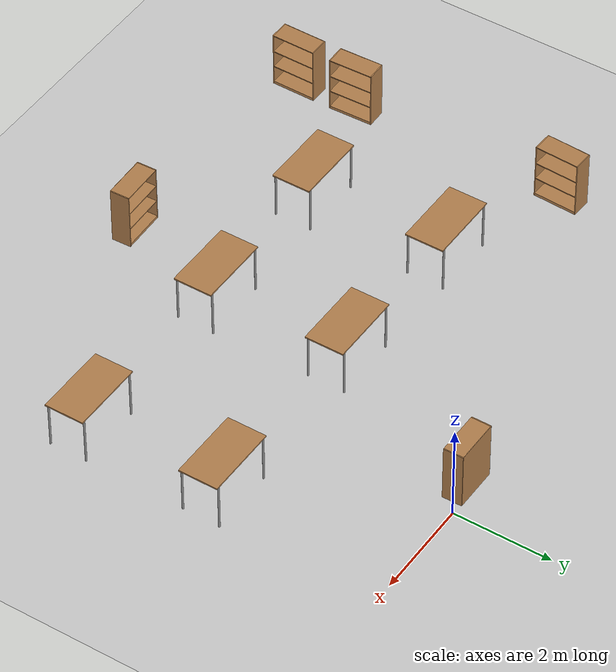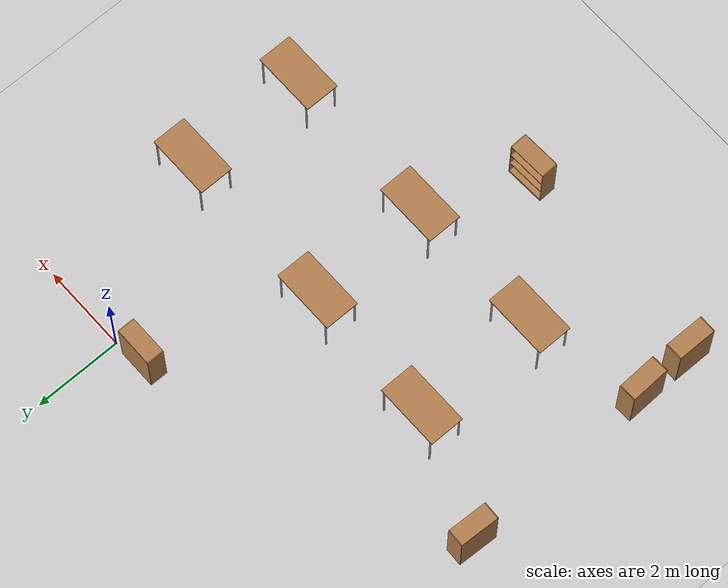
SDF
<sdf version="1.6">
 <world name="default">
  <model name="ground_plane">
   <static>1</static>
   <link name="link">
    <collision name="collision">
     <geometry><plane><normal>0 0 1</normal><size>100 100</size></plane></geometry>
     <surface>
      <contact><collide_bitmask>65535</collide_bitmask></contact>
      <friction><ode><mu>100</mu><mu2>50</mu2></ode></friction>
     </surface>
    </collision>
    <visual name="visual">
     <cast_shadows>0</cast_shadows>
     <geometry><plane><normal>0 0 1</normal><size>100 100</size></plane></geometry>
     <material>
      <script><uri>file://media/materials/scripts/gazebo.material</uri><name>Gazebo/Grey</name></script>
     </material>
    </visual>
   </link>
  </model>
  <model name="table_3">
   <static>1</static>
   <link name="link">
    <collision name="surface">
     <pose>0 0 1 0 -0 0</pose>
     <geometry><box><size>1.5 0.8 0.03</size></box></geometry>
     <surface><friction><ode><mu>0.6</mu><mu2>0.6</mu2></ode></friction></surface>
    </collision>
    <visual name="visual1">
     <pose>0 0 1 0 -0 0</pose>
     <geometry><box><size>1.5 0.8 0.03</size></box></geometry>
     <material>
      <script><uri>file://media/materials/scripts/gazebo.material</uri><name>Gazebo/Wood</name></script>
     </material>
    </visual>
    <collision name="front_left_leg">
     <pose>0.68 0.38 0.5 0 -0 0</pose>
     <geometry><cylinder><radius>0.02</radius><length>1</length></cylinder></geometry>
    </collision>
    <visual name="front_left_leg">
     <pose>0.68 0.38 0.5 0 -0 0</pose>
     <geometry><cylinder><radius>0.02</radius><length>1</length></cylinder></geometry>
     <material>
      <script><uri>file://media/materials/scripts/gazebo.material</uri><name>Gazebo/Grey</name></script>
     </material>
    </visual>
    <collision name="front_right_leg">
     <pose>0.68 -0.38 0.5 0 -0 0</pose>
     <geometry><cylinder><radius>0.02</radius><length>1</length></cylinder></geometry>
    </collision>
    <visual name="front_right_leg">
     <pose>0.68 -0.38 0.5 0 -0 0</pose>
     <geometry><cylinder><radius>0.02</radius><length>1</length></cylinder></geometry>
     <material>
      <script><uri>file://media/materials/scripts/gazebo.material</uri><name>Gazebo/Grey</name></script>
     </material>
    </visual>
    <collision name="back_right_leg">
     <pose>-0.68 -0.38 0.5 0 -0 0</pose>
     <geometry><cylinder><radius>0.02</radius><length>1</length></cylinder></geometry>
    </collision>
    <visual name="back_right_leg">
     <pose>-0.68 -0.38 0.5 0 -0 0</pose>
     <geometry><cylinder><radius>0.02</radius><length>1</length></cylinder></geometry>
     <material>
      <script><uri>file://media/materials/scripts/gazebo.material</uri><name>Gazebo/Grey</name></script>
     </material>
    </visual>
    <collision name="back_left_leg">
     <pose>-0.68 0.38 0.5 0 -0 0</pose>
     <geometry><cylinder><radius>0.02</radius><length>1</length></cylinder></geometry>
    </collision>
    <visual name="back_left_leg">
     <pose>-0.68 0.38 0.5 0 -0 0</pose>
     <geometry><cylinder><radius>0.02</radius><length>1</length></cylinder></geometry>
     <material>
      <script><uri>file://media/materials/scripts/gazebo.material</uri><name>Gazebo/Grey</name></script>
     </material>
    </visual>
   </link>
   <pose>1.7722 -6.37571 0 0 -0 0</pose>
  </model>
  <model name="table_5">
   <static>1</static>
   <link name="link">
    <collision name="surface">
     <pose>0 0 1 0 -0 0</pose>
     <geometry><box><size>1.5 0.8 0.03</size></box></geometry>
     <surface><friction><ode><mu>0.6</mu><mu2>0.6</mu2></ode></friction></surface>
    </collision>
    <visual name="visual1">
     <pose>0 0 1 0 -0 0</pose>
     <geometry><box><size>1.5 0.8 0.03</size></box></geometry>
     <material>
      <script><uri>file://media/materials/scripts/gazebo.material</uri><name>Gazebo/Wood</name></script>
     </material>
    </visual>
    <collision name="front_left_leg">
     <pose>0.68 0.38 0.5 0 -0 0</pose>
     <geometry><cylinder><radius>0.02</radius><length>1</length></cylinder></geometry>
    </collision>
    <visual name="front_left_leg">
     <pose>0.68 0.38 0.5 0 -0 0</pose>
     <geometry><cylinder><radius>0.02</radius><length>1</length></cylinder></geometry>
     <material>
      <script><uri>file://media/materials/scripts/gazebo.material</uri><name>Gazebo/Grey</name></script>
     </material>
    </visual>
    <collision name="front_right_leg">
     <pose>0.68 -0.38 0.5 0 -0 0</pose>
     <geometry><cylinder><radius>0.02</radius><length>1</length></cylinder></geometry>
    </collision>
    <visual name="front_right_leg">
     <pose>0.68 -0.38 0.5 0 -0 0</pose>
     <geometry><cylinder><radius>0.02</radius><length>1</length></cylinder></geometry>
     <material>
      <script><uri>file://media/materials/scripts/gazebo.material</uri><name>Gazebo/Grey</name></script>
     </material>
    </visual>
    <collision name="back_right_leg">
     <pose>-0.68 -0.38 0.5 0 -0 0</pose>
     <geometry><cylinder><radius>0.02</radius><length>1</length></cylinder></geometry>
    </collision>
    <visual name="back_right_leg">
     <pose>-0.68 -0.38 0.5 0 -0 0</pose>
     <geometry><cylinder><radius>0.02</radius><length>1</length></cylinder></geometry>
     <material>
      <script><uri>file://media/materials/scripts/gazebo.material</uri><name>Gazebo/Grey</name></script>
     </material>
    </visual>
    <collision name="back_left_leg">
     <pose>-0.68 0.38 0.5 0 -0 0</pose>
     <geometry><cylinder><radius>0.02</radius><length>1</length></cylinder></geometry>
    </collision>
    <visual name="back_left_leg">
     <pose>-0.68 0.38 0.5 0 -0 0</pose>
     <geometry><cylinder><radius>0.02</radius><length>1</length></cylinder></geometry>
     <material>
      <script><uri>file://media/materials/scripts/gazebo.material</uri><name>Gazebo/Grey</name></script>
     </material>
    </visual>
   </link>
   <pose>1.77864 -3.55993 0 0 -0 0</pose>
  </model>
  <model name="table_6">
   <static>1</static>
   <link name="link">
    <collision name="surface">
     <pose>0 0 1 0 -0 0</pose>
     <geometry><box><size>1.5 0.8 0.03</size></box></geometry>
     <surface><friction><ode><mu>0.6</mu><mu2>0.6</mu2></ode></friction></surface>
    </collision>
    <visual name="visual1">
     <pose>0 0 1 0 -0 0</pose>
     <geometry><box><size>1.5 0.8 0.03</size></box></geometry>
     <material>
      <script><uri>file://media/materials/scripts/gazebo.material</uri><name>Gazebo/Wood</name></script>
     </material>
    </visual>
    <collision name="front_left_leg">
     <pose>0.68 0.38 0.5 0 -0 0</pose>
     <geometry><cylinder><radius>0.02</radius><length>1</length></cylinder></geometry>
    </collision>
    <visual name="front_left_leg">
     <pose>0.68 0.38 0.5 0 -0 0</pose>
     <geometry><cylinder><radius>0.02</radius><length>1</length></cylinder></geometry>
     <material>
      <script><uri>file://media/materials/scripts/gazebo.material</uri><name>Gazebo/Grey</name></script>
     </material>
    </visual>
    <collision name="front_right_leg">
     <pose>0.68 -0.38 0.5 0 -0 0</pose>
     <geometry><cylinder><radius>0.02</radius><length>1</length></cylinder></geometry>
    </collision>
    <visual name="front_right_leg">
     <pose>0.68 -0.38 0.5 0 -0 0</pose>
     <geometry><cylinder><radius>0.02</radius><length>1</length></cylinder></geometry>
     <material>
      <script><uri>file://media/materials/scripts/gazebo.material</uri><name>Gazebo/Grey</name></script>
     </material>
    </visual>
    <collision name="back_right_leg">
     <pose>-0.68 -0.38 0.5 0 -0 0</pose>
     <geometry><cylinder><radius>0.02</radius><length>1</length></cylinder></geometry>
    </collision>
    <visual name="back_right_leg">
     <pose>-0.68 -0.38 0.5 0 -0 0</pose>
     <geometry><cylinder><radius>0.02</radius><length>1</length></cylinder></geometry>
     <material>
      <script><uri>file://media/materials/scripts/gazebo.material</uri><name>Gazebo/Grey</name></script>
     </material>
    </visual>
    <collision name="back_left_leg">
     <pose>-0.68 0.38 0.5 0 -0 0</pose>
     <geometry><cylinder><radius>0.02</radius><length>1</length></cylinder></geometry>
    </collision>
    <visual name="back_left_leg">
     <pose>-0.68 0.38 0.5 0 -0 0</pose>
     <geometry><cylinder><radius>0.02</radius><length>1</length></cylinder></geometry>
     <material>
      <script><uri>file://media/materials/scripts/gazebo.material</uri><name>Gazebo/Grey</name></script>
     </material>
    </visual>
   </link>
   <pose>-5.25921 -6.34689 0 0 -0 0</pose>
  </model>
  <model name="table_9">
   <static>1</static>
   <link name="link">
    <collision name="surface">
     <pose>0 0 1 0 -0 0</pose>
     <geometry><box><size>1.5 0.8 0.03</size></box></geometry>
     <surface><friction><ode><mu>0.6</mu><mu2>0.6</mu2></ode></friction></surface>
    </collision>
    <visual name="visual1">
     <pose>0 0 1 0 -0 0</pose>
     <geometry><box><size>1.5 0.8 0.03</size></box></geometry>
     <material>
      <script><uri>file://media/materials/scripts/gazebo.material</uri><name>Gazebo/Wood</name></script>
     </material>
    </visual>
    <collision name="front_left_leg">
     <pose>0.68 0.38 0.5 0 -0 0</pose>
     <geometry><cylinder><radius>0.02</radius><length>1</length></cylinder></geometry>
    </collision>
    <visual name="front_left_leg">
     <pose>0.68 0.38 0.5 0 -0 0</pose>
     <geometry><cylinder><radius>0.02</radius><length>1</length></cylinder></geometry>
     <material>
      <script><uri>file://media/materials/scripts/gazebo.material</uri><name>Gazebo/Grey</name></script>
     </material>
    </visual>
    <collision name="front_right_leg">
     <pose>0.68 -0.38 0.5 0 -0 0</pose>
     <geometry><cylinder><radius>0.02</radius><length>1</length></cylinder></geometry>
    </collision>
    <visual name="front_right_leg">
     <pose>0.68 -0.38 0.5 0 -0 0</pose>
     <geometry><cylinder><radius>0.02</radius><length>1</length></cylinder></geometry>
     <material>
      <script><uri>file://media/materials/scripts/gazebo.material</uri><name>Gazebo/Grey</name></script>
     </material>
    </visual>
    <collision name="back_right_leg">
     <pose>-0.68 -0.38 0.5 0 -0 0</pose>
     <geometry><cylinder><radius>0.02</radius><length>1</length></cylinder></geometry>
    </collision>
    <visual name="back_right_leg">
     <pose>-0.68 -0.38 0.5 0 -0 0</pose>
     <geometry><cylinder><radius>0.02</radius><length>1</length></cylinder></geometry>
     <material>
      <script><uri>file://media/materials/scripts/gazebo.material</uri><name>Gazebo/Grey</name></script>
     </material>
    </visual>
    <collision name="back_left_leg">
     <pose>-0.68 0.38 0.5 0 -0 0</pose>
     <geometry><cylinder><radius>0.02</radius><length>1</length></cylinder></geometry>
    </collision>
    <visual name="back_left_leg">
     <pose>-0.68 0.38 0.5 0 -0 0</pose>
     <geometry><cylinder><radius>0.02</radius><length>1</length></cylinder></geometry>
     <material>
      <script><uri>file://media/materials/scripts/gazebo.material</uri><name>Gazebo/Grey</name></script>
     </material>
    </visual>
   </link>
   <pose>-5.27613 -3.47725 0 0 -0 0</pose>
  </model>
  <model name="table_10">
   <static>1</static>
   <link name="link">
    <collision name="surface">
     <pose>0 0 1 0 -0 0</pose>
     <geometry><box><size>1.5 0.8 0.03</size></box></geometry>
     <surface><friction><ode><mu>0.6</mu><mu2>0.6</mu2></ode></friction></surface>
    </collision>
    <visual name="visual1">
     <pose>0 0 1 0 -0 0</pose>
     <geometry><box><size>1.5 0.8 0.03</size></box></geometry>
     <material>
      <script><uri>file://media/materials/scripts/gazebo.material</uri><name>Gazebo/Wood</name></script>
     </material>
    </visual>
    <collision name="front_left_leg">
     <pose>0.68 0.38 0.5 0 -0 0</pose>
     <geometry><cylinder><radius>0.02</radius><length>1</length></cylinder></geometry>
    </collision>
    <visual name="front_left_leg">
     <pose>0.68 0.38 0.5 0 -0 0</pose>
     <geometry><cylinder><radius>0.02</radius><length>1</length></cylinder></geometry>
     <material>
      <script><uri>file://media/materials/scripts/gazebo.material</uri><name>Gazebo/Grey</name></script>
     </material>
    </visual>
    <collision name="front_right_leg">
     <pose>0.68 -0.38 0.5 0 -0 0</pose>
     <geometry><cylinder><radius>0.02</radius><length>1</length></cylinder></geometry>
    </collision>
    <visual name="front_right_leg">
     <pose>0.68 -0.38 0.5 0 -0 0</pose>
     <geometry><cylinder><radius>0.02</radius><length>1</length></cylinder></geometry>
     <material>
      <script><uri>file://media/materials/scripts/gazebo.material</uri><name>Gazebo/Grey</name></script>
     </material>
    </visual>
    <collision name="back_right_leg">
     <pose>-0.68 -0.38 0.5 0 -0 0</pose>
     <geometry><cylinder><radius>0.02</radius><length>1</length></cylinder></geometry>
    </collision>
    <visual name="back_right_leg">
     <pose>-0.68 -0.38 0.5 0 -0 0</pose>
     <geometry><cylinder><radius>0.02</radius><length>1</length></cylinder></geometry>
     <material>
      <script><uri>file://media/materials/scripts/gazebo.material</uri><name>Gazebo/Grey</name></script>
     </material>
    </visual>
    <collision name="back_left_leg">
     <pose>-0.68 0.38 0.5 0 -0 0</pose>
     <geometry><cylinder><radius>0.02</radius><length>1</length></cylinder></geometry>
    </collision>
    <visual name="back_left_leg">
     <pose>-0.68 0.38 0.5 0 -0 0</pose>
     <geometry><cylinder><radius>0.02</radius><length>1</length></cylinder></geometry>
     <material>
      <script><uri>file://media/materials/scripts/gazebo.material</uri><name>Gazebo/Grey</name></script>
     </material>
    </visual>
   </link>
   <pose>-2.03953 -6.30852 0 0 -0 0</pose>
  </model>
  <model name="table_13">
   <static>1</static>
   <link name="link">
    <collision name="surface">
     <pose>0 0 1 0 -0 0</pose>
     <geometry><box><size>1.5 0.8 0.03</size></box></geometry>
     <surface><friction><ode><mu>0.6</mu><mu2>0.6</mu2></ode></friction></surface>
    </collision>
    <visual name="visual1">
     <pose>0 0 1 0 -0 0</pose>
     <geometry><box><size>1.5 0.8 0.03</size></box></geometry>
     <material>
      <script><uri>file://media/materials/scripts/gazebo.material</uri><name>Gazebo/Wood</name></script>
     </material>
    </visual>
    <collision name="front_left_leg">
     <pose>0.68 0.38 0.5 0 -0 0</pose>
     <geometry><cylinder><radius>0.02</radius><length>1</length></cylinder></geometry>
    </collision>
    <visual name="front_left_leg">
     <pose>0.68 0.38 0.5 0 -0 0</pose>
     <geometry><cylinder><radius>0.02</radius><length>1</length></cylinder></geometry>
     <material>
      <script><uri>file://media/materials/scripts/gazebo.material</uri><name>Gazebo/Grey</name></script>
     </material>
    </visual>
    <collision name="front_right_leg">
     <pose>0.68 -0.38 0.5 0 -0 0</pose>
     <geometry><cylinder><radius>0.02</radius><length>1</length></cylinder></geometry>
    </collision>
    <visual name="front_right_leg">
     <pose>0.68 -0.38 0.5 0 -0 0</pose>
     <geometry><cylinder><radius>0.02</radius><length>1</length></cylinder></geometry>
     <material>
      <script><uri>file://media/materials/scripts/gazebo.material</uri><name>Gazebo/Grey</name></script>
     </material>
    </visual>
    <collision name="back_right_leg">
     <pose>-0.68 -0.38 0.5 0 -0 0</pose>
     <geometry><cylinder><radius>0.02</radius><length>1</length></cylinder></geometry>
    </collision>
    <visual name="back_right_leg">
     <pose>-0.68 -0.38 0.5 0 -0 0</pose>
     <geometry><cylinder><radius>0.02</radius><length>1</length></cylinder></geometry>
     <material>
      <script><uri>file://media/materials/scripts/gazebo.material</uri><name>Gazebo/Grey</name></script>
     </material>
    </visual>
    <collision name="back_left_leg">
     <pose>-0.68 0.38 0.5 0 -0 0</pose>
     <geometry><cylinder><radius>0.02</radius><length>1</length></cylinder></geometry>
    </collision>
    <visual name="back_left_leg">
     <pose>-0.68 0.38 0.5 0 -0 0</pose>
     <geometry><cylinder><radius>0.02</radius><length>1</length></cylinder></geometry>
     <material>
      <script><uri>file://media/materials/scripts/gazebo.material</uri><name>Gazebo/Grey</name></script>
     </material>
    </visual>
   </link>
   <pose>-2.09397 -3.53851 0 0 -0 0</pose>
  </model>
  <model name="bookshelf_4">
   <static>1</static>
   <link name="link">
    <inertial><mass>1</mass></inertial>
    <collision name="back">
     <pose>0 0.005 0.6 0 -0 0</pose>
     <geometry><box><size>0.9 0.01 1.2</size></box></geometry>
    </collision>
    <visual name="visual1">
     <pose>0 0.005 0.6 0 -0 0</pose>
     <geometry><box><size>0.9 0.01 1.2</size></box></geometry>
     <material>
      <script><uri>file://media/materials/scripts/gazebo.material</uri><name>Gazebo/Wood</name></script>
     </material>
    </visual>
    <collision name="left_side">
     <pose>0.45 -0.195 0.6 0 -0 0</pose>
     <geometry><box><size>0.02 0.4 1.2</size></box></geometry>
    </collision>
    <visual name="visual2">
     <pose>0.45 -0.195 0.6 0 -0 0</pose>
     <geometry><box><size>0.02 0.4 1.2</size></box></geometry>
     <material>
      <script><uri>file://media/materials/scripts/gazebo.material</uri><name>Gazebo/Wood</name></script>
     </material>
    </visual>
    <collision name="right_side">
     <pose>-0.45 -0.195 0.6 0 -0 0</pose>
     <geometry><box><size>0.02 0.4 1.2</size></box></geometry>
    </collision>
    <visual name="visual3">
     <pose>-0.45 -0.195 0.6 0 -0 0</pose>
     <geometry><box><size>0.02 0.4 1.2</size></box></geometry>
     <material>
      <script><uri>file://media/materials/scripts/gazebo.material</uri><name>Gazebo/Wood</name></script>
     </material>
    </visual>
    <collision name="bottom">
     <pose>0 -0.195 0.03 0 -0 0</pose>
     <geometry><box><size>0.88 0.4 0.06</size></box></geometry>
    </collision>
    <visual name="visual4">
     <pose>0 -0.195 0.03 0 -0 0</pose>
     <geometry><box><size>0.88 0.4 0.06</size></box></geometry>
     <material>
      <script><uri>file://media/materials/scripts/gazebo.material</uri><name>Gazebo/Wood</name></script>
     </material>
    </visual>
    <collision name="top">
     <pose>0 -0.195 1.19 0 -0 0</pose>
     <geometry><box><size>0.88 0.4 0.02</size></box></geometry>
    </collision>
    <visual name="visual5">
     <pose>0 -0.195 1.19 0 -0 0</pose>
     <geometry><box><size>0.88 0.4 0.02</size></box></geometry>
     <material>
      <script><uri>file://media/materials/scripts/gazebo.material</uri><name>Gazebo/Wood</name></script>
     </material>
    </visual>
    <collision name="low_shelf">
     <pose>0 -0.195 0.43 0 -0 0</pose>
     <geometry><box><size>0.88 0.4 0.02</size></box></geometry>
    </collision>
    <visual name="visual6">
     <pose>0 -0.195 0.43 0 -0 0</pose>
     <geometry><box><size>0.88 0.4 0.02</size></box></geometry>
     <material>
      <script><uri>file://media/materials/scripts/gazebo.material</uri><name>Gazebo/Wood</name></script>
     </material>
    </visual>
    <collision name="high_shelf">
     <pose>0 -0.195 0.8 0 -0 0</pose>
     <geometry><box><size>0.88 0.4 0.02</size></box></geometry>
    </collision>
    <visual name="visual7">
     <pose>0 -0.195 0.8 0 -0 0</pose>
     <geometry><box><size>0.88 0.4 0.02</size></box></geometry>
     <material>
      <script><uri>file://media/materials/scripts/gazebo.material</uri><name>Gazebo/Wood</name></script>
     </material>
    </visual>
   </link>
   <pose>-0.686415 0.03479 0 0 -0 0</pose>
  </model>
  <model name="bookshelf_6">
   <static>1</static>
   <link name="link">
    <inertial><mass>1</mass></inertial>
    <collision name="back">
     <pose>0 0.005 0.6 0 -0 0</pose>
     <geometry><box><size>0.9 0.01 1.2</size></box></geometry>
    </collision>
    <visual name="visual1">
     <pose>0 0.005 0.6 0 -0 0</pose>
     <geometry><box><size>0.9 0.01 1.2</size></box></geometry>
     <material>
      <script><uri>file://media/materials/scripts/gazebo.material</uri><name>Gazebo/Wood</name></script>
     </material>
    </visual>
    <collision name="left_side">
     <pose>0.45 -0.195 0.6 0 -0 0</pose>
     <geometry><box><size>0.02 0.4 1.2</size></box></geometry>
    </collision>
    <visual name="visual2">
     <pose>0.45 -0.195 0.6 0 -0 0</pose>
     <geometry><box><size>0.02 0.4 1.2</size></box></geometry>
     <material>
      <script><uri>file://media/materials/scripts/gazebo.material</uri><name>Gazebo/Wood</name></script>
     </material>
    </visual>
    <collision name="right_side">
     <pose>-0.45 -0.195 0.6 0 -0 0</pose>
     <geometry><box><size>0.02 0.4 1.2</size></box></geometry>
    </collision>
    <visual name="visual3">
     <pose>-0.45 -0.195 0.6 0 -0 0</pose>
     <geometry><box><size>0.02 0.4 1.2</size></box></geometry>
     <material>
      <script><uri>file://media/materials/scripts/gazebo.material</uri><name>Gazebo/Wood</name></script>
     </material>
    </visual>
    <collision name="bottom">
     <pose>0 -0.195 0.03 0 -0 0</pose>
     <geometry><box><size>0.88 0.4 0.06</size></box></geometry>
    </collision>
    <visual name="visual4">
     <pose>0 -0.195 0.03 0 -0 0</pose>
     <geometry><box><size>0.88 0.4 0.06</size></box></geometry>
     <material>
      <script><uri>file://media/materials/scripts/gazebo.material</uri><name>Gazebo/Wood</name></script>
     </material>
    </visual>
    <collision name="top">
     <pose>0 -0.195 1.19 0 -0 0</pose>
     <geometry><box><size>0.88 0.4 0.02</size></box></geometry>
    </collision>
    <visual name="visual5">
     <pose>0 -0.195 1.19 0 -0 0</pose>
     <geometry><box><size>0.88 0.4 0.02</size></box></geometry>
     <material>
      <script><uri>file://media/materials/scripts/gazebo.material</uri><name>Gazebo/Wood</name></script>
     </material>
    </visual>
    <collision name="low_shelf">
     <pose>0 -0.195 0.43 0 -0 0</pose>
     <geometry><box><size>0.88 0.4 0.02</size></box></geometry>
    </collision>
    <visual name="visual6">
     <pose>0 -0.195 0.43 0 -0 0</pose>
     <geometry><box><size>0.88 0.4 0.02</size></box></geometry>
     <material>
      <script><uri>file://media/materials/scripts/gazebo.material</uri><name>Gazebo/Wood</name></script>
     </material>
    </visual>
    <collision name="high_shelf">
     <pose>0 -0.195 0.8 0 -0 0</pose>
     <geometry><box><size>0.88 0.4 0.02</size></box></geometry>
    </collision>
    <visual name="visual7">
     <pose>0 -0.195 0.8 0 -0 0</pose>
     <geometry><box><size>0.88 0.4 0.02</size></box></geometry>
     <material>
      <script><uri>file://media/materials/scripts/gazebo.material</uri><name>Gazebo/Wood</name></script>
     </material>
    </visual>
   </link>
   <pose>-2.82315 -8.86889 0 0 0 -3.10801</pose>
  </model>
  <model name="bookshelf_7">
   <static>1</static>
   <link name="link">
    <inertial><mass>1</mass></inertial>
    <collision name="back">
     <pose>0 0.005 0.6 0 -0 0</pose>
     <geometry><box><size>0.9 0.01 1.2</size></box></geometry>
    </collision>
    <visual name="visual1">
     <pose>0 0.005 0.6 0 -0 0</pose>
     <geometry><box><size>0.9 0.01 1.2</size></box></geometry>
     <material>
      <script><uri>file://media/materials/scripts/gazebo.material</uri><name>Gazebo/Wood</name></script>
     </material>
    </visual>
    <collision name="left_side">
     <pose>0.45 -0.195 0.6 0 -0 0</pose>
     <geometry><box><size>0.02 0.4 1.2</size></box></geometry>
    </collision>
    <visual name="visual2">
     <pose>0.45 -0.195 0.6 0 -0 0</pose>
     <geometry><box><size>0.02 0.4 1.2</size></box></geometry>
     <material>
      <script><uri>file://media/materials/scripts/gazebo.material</uri><name>Gazebo/Wood</name></script>
     </material>
    </visual>
    <collision name="right_side">
     <pose>-0.45 -0.195 0.6 0 -0 0</pose>
     <geometry><box><size>0.02 0.4 1.2</size></box></geometry>
    </collision>
    <visual name="visual3">
     <pose>-0.45 -0.195 0.6 0 -0 0</pose>
     <geometry><box><size>0.02 0.4 1.2</size></box></geometry>
     <material>
      <script><uri>file://media/materials/scripts/gazebo.material</uri><name>Gazebo/Wood</name></script>
     </material>
    </visual>
    <collision name="bottom">
     <pose>0 -0.195 0.03 0 -0 0</pose>
     <geometry><box><size>0.88 0.4 0.06</size></box></geometry>
    </collision>
    <visual name="visual4">
     <pose>0 -0.195 0.03 0 -0 0</pose>
     <geometry><box><size>0.88 0.4 0.06</size></box></geometry>
     <material>
      <script><uri>file://media/materials/scripts/gazebo.material</uri><name>Gazebo/Wood</name></script>
     </material>
    </visual>
    <collision name="top">
     <pose>0 -0.195 1.19 0 -0 0</pose>
     <geometry><box><size>0.88 0.4 0.02</size></box></geometry>
    </collision>
    <visual name="visual5">
     <pose>0 -0.195 1.19 0 -0 0</pose>
     <geometry><box><size>0.88 0.4 0.02</size></box></geometry>
     <material>
      <script><uri>file://media/materials/scripts/gazebo.material</uri><name>Gazebo/Wood</name></script>
     </material>
    </visual>
    <collision name="low_shelf">
     <pose>0 -0.195 0.43 0 -0 0</pose>
     <geometry><box><size>0.88 0.4 0.02</size></box></geometry>
    </collision>
    <visual name="visual6">
     <pose>0 -0.195 0.43 0 -0 0</pose>
     <geometry><box><size>0.88 0.4 0.02</size></box></geometry>
     <material>
      <script><uri>file://media/materials/scripts/gazebo.material</uri><name>Gazebo/Wood</name></script>
     </material>
    </visual>
    <collision name="high_shelf">
     <pose>0 -0.195 0.8 0 -0 0</pose>
     <geometry><box><size>0.88 0.4 0.02</size></box></geometry>
    </collision>
    <visual name="visual7">
     <pose>0 -0.195 0.8 0 -0 0</pose>
     <geometry><box><size>0.88 0.4 0.02</size></box></geometry>
     <material>
      <script><uri>file://media/materials/scripts/gazebo.material</uri><name>Gazebo/Wood</name></script>
     </material>
    </visual>
   </link>
   <pose>-7.96408 -8.33226 0 0 -0 1.56027</pose>
  </model>
  <model name="bookshelf_8">
   <static>1</static>
   <link name="link">
    <inertial><mass>1</mass></inertial>
    <collision name="back">
     <pose>0 0.005 0.6 0 -0 0</pose>
     <geometry><box><size>0.9 0.01 1.2</size></box></geometry>
    </collision>
    <visual name="visual1">
     <pose>0 0.005 0.6 0 -0 0</pose>
     <geometry><box><size>0.9 0.01 1.2</size></box></geometry>
     <material>
      <script><uri>file://media/materials/scripts/gazebo.material</uri><name>Gazebo/Wood</name></script>
     </material>
    </visual>
    <collision name="left_side">
     <pose>0.45 -0.195 0.6 0 -0 0</pose>
     <geometry><box><size>0.02 0.4 1.2</size></box></geometry>
    </collision>
    <visual name="visual2">
     <pose>0.45 -0.195 0.6 0 -0 0</pose>
     <geometry><box><size>0.02 0.4 1.2</size></box></geometry>
     <material>
      <script><uri>file://media/materials/scripts/gazebo.material</uri><name>Gazebo/Wood</name></script>
     </material>
    </visual>
    <collision name="right_side">
     <pose>-0.45 -0.195 0.6 0 -0 0</pose>
     <geometry><box><size>0.02 0.4 1.2</size></box></geometry>
    </collision>
    <visual name="visual3">
     <pose>-0.45 -0.195 0.6 0 -0 0</pose>
     <geometry><box><size>0.02 0.4 1.2</size></box></geometry>
     <material>
      <script><uri>file://media/materials/scripts/gazebo.material</uri><name>Gazebo/Wood</name></script>
     </material>
    </visual>
    <collision name="bottom">
     <pose>0 -0.195 0.03 0 -0 0</pose>
     <geometry><box><size>0.88 0.4 0.06</size></box></geometry>
    </collision>
    <visual name="visual4">
     <pose>0 -0.195 0.03 0 -0 0</pose>
     <geometry><box><size>0.88 0.4 0.06</size></box></geometry>
     <material>
      <script><uri>file://media/materials/scripts/gazebo.material</uri><name>Gazebo/Wood</name></script>
     </material>
    </visual>
    <collision name="top">
     <pose>0 -0.195 1.19 0 -0 0</pose>
     <geometry><box><size>0.88 0.4 0.02</size></box></geometry>
    </collision>
    <visual name="visual5">
     <pose>0 -0.195 1.19 0 -0 0</pose>
     <geometry><box><size>0.88 0.4 0.02</size></box></geometry>
     <material>
      <script><uri>file://media/materials/scripts/gazebo.material</uri><name>Gazebo/Wood</name></script>
     </material>
    </visual>
    <collision name="low_shelf">
     <pose>0 -0.195 0.43 0 -0 0</pose>
     <geometry><box><size>0.88 0.4 0.02</size></box></geometry>
    </collision>
    <visual name="visual6">
     <pose>0 -0.195 0.43 0 -0 0</pose>
     <geometry><box><size>0.88 0.4 0.02</size></box></geometry>
     <material>
      <script><uri>file://media/materials/scripts/gazebo.material</uri><name>Gazebo/Wood</name></script>
     </material>
    </visual>
    <collision name="high_shelf">
     <pose>0 -0.195 0.8 0 -0 0</pose>
     <geometry><box><size>0.88 0.4 0.02</size></box></geometry>
    </collision>
    <visual name="visual7">
     <pose>0 -0.195 0.8 0 -0 0</pose>
     <geometry><box><size>0.88 0.4 0.02</size></box></geometry>
     <material>
      <script><uri>file://media/materials/scripts/gazebo.material</uri><name>Gazebo/Wood</name></script>
     </material>
    </visual>
   </link>
   <pose>-7.97304 -7.06584 0 0 -0 1.60125</pose>
  </model>
  <model name="bookshelf_9">
   <static>1</static>
   <link name="link">
    <inertial><mass>1</mass></inertial>
    <collision name="back">
     <pose>0 0.005 0.6 0 -0 0</pose>
     <geometry><box><size>0.9 0.01 1.2</size></box></geometry>
    </collision>
    <visual name="visual1">
     <pose>0 0.005 0.6 0 -0 0</pose>
     <geometry><box><size>0.9 0.01 1.2</size></box></geometry>
     <material>
      <script><uri>file://media/materials/scripts/gazebo.material</uri><name>Gazebo/Wood</name></script>
     </material>
    </visual>
    <collision name="left_side">
     <pose>0.45 -0.195 0.6 0 -0 0</pose>
     <geometry><box><size>0.02 0.4 1.2</size></box></geometry>
    </collision>
    <visual name="visual2">
     <pose>0.45 -0.195 0.6 0 -0 0</pose>
     <geometry><box><size>0.02 0.4 1.2</size></box></geometry>
     <material>
      <script><uri>file://media/materials/scripts/gazebo.material</uri><name>Gazebo/Wood</name></script>
     </material>
    </visual>
    <collision name="right_side">
     <pose>-0.45 -0.195 0.6 0 -0 0</pose>
     <geometry><box><size>0.02 0.4 1.2</size></box></geometry>
    </collision>
    <visual name="visual3">
     <pose>-0.45 -0.195 0.6 0 -0 0</pose>
     <geometry><box><size>0.02 0.4 1.2</size></box></geometry>
     <material>
      <script><uri>file://media/materials/scripts/gazebo.material</uri><name>Gazebo/Wood</name></script>
     </material>
    </visual>
    <collision name="bottom">
     <pose>0 -0.195 0.03 0 -0 0</pose>
     <geometry><box><size>0.88 0.4 0.06</size></box></geometry>
    </collision>
    <visual name="visual4">
     <pose>0 -0.195 0.03 0 -0 0</pose>
     <geometry><box><size>0.88 0.4 0.06</size></box></geometry>
     <material>
      <script><uri>file://media/materials/scripts/gazebo.material</uri><name>Gazebo/Wood</name></script>
     </material>
    </visual>
    <collision name="top">
     <pose>0 -0.195 1.19 0 -0 0</pose>
     <geometry><box><size>0.88 0.4 0.02</size></box></geometry>
    </collision>
    <visual name="visual5">
     <pose>0 -0.195 1.19 0 -0 0</pose>
     <geometry><box><size>0.88 0.4 0.02</size></box></geometry>
     <material>
      <script><uri>file://media/materials/scripts/gazebo.material</uri><name>Gazebo/Wood</name></script>
     </material>
    </visual>
    <collision name="low_shelf">
     <pose>0 -0.195 0.43 0 -0 0</pose>
     <geometry><box><size>0.88 0.4 0.02</size></box></geometry>
    </collision>
    <visual name="visual6">
     <pose>0 -0.195 0.43 0 -0 0</pose>
     <geometry><box><size>0.88 0.4 0.02</size></box></geometry>
     <material>
      <script><uri>file://media/materials/scripts/gazebo.material</uri><name>Gazebo/Wood</name></script>
     </material>
    </visual>
    <collision name="high_shelf">
     <pose>0 -0.195 0.8 0 -0 0</pose>
     <geometry><box><size>0.88 0.4 0.02</size></box></geometry>
    </collision>
    <visual name="visual7">
     <pose>0 -0.195 0.8 0 -0 0</pose>
     <geometry><box><size>0.88 0.4 0.02</size></box></geometry>
     <material>
      <script><uri>file://media/materials/scripts/gazebo.material</uri><name>Gazebo/Wood</name></script>
     </material>
    </visual>
   </link>
   <pose>-8.0034 -2.54077 0 0 -0 1.52227</pose>
  </model>
 </world>
</sdf>
